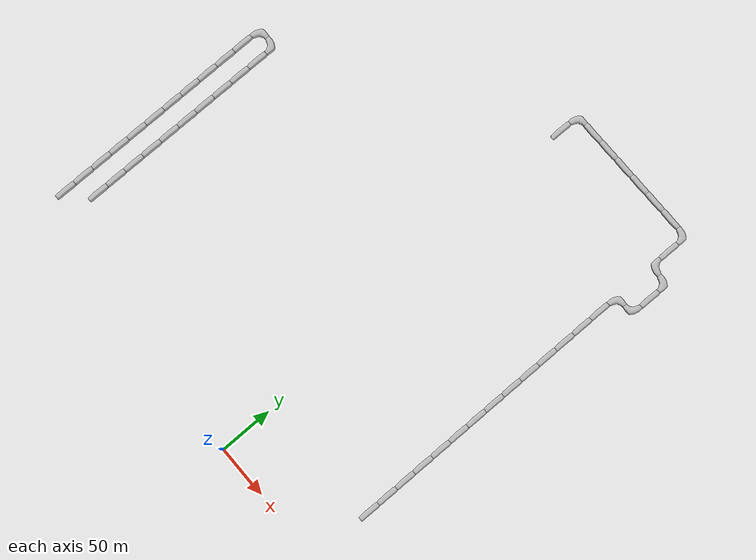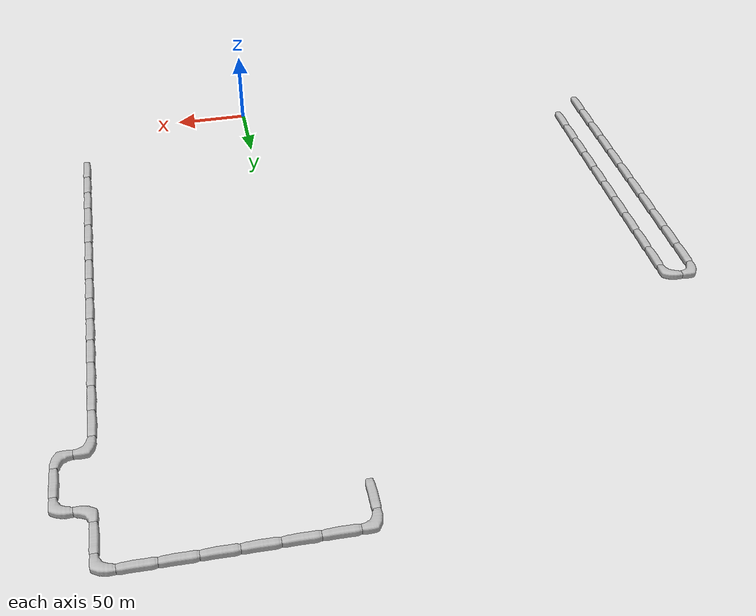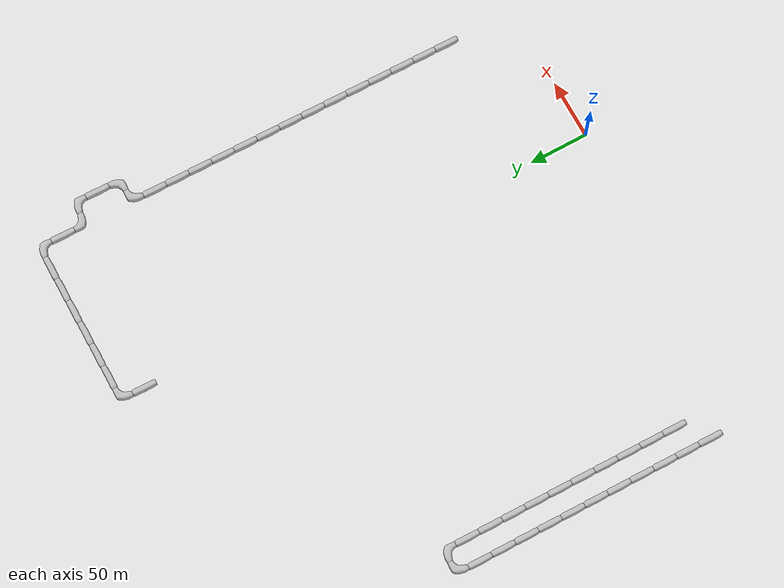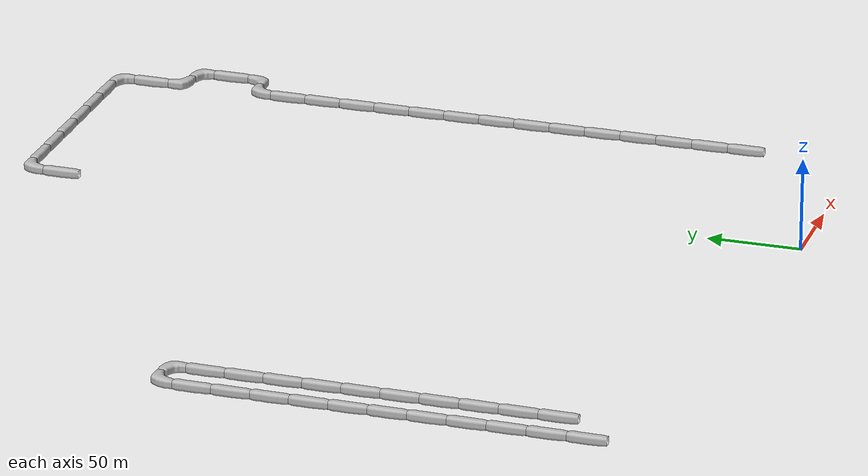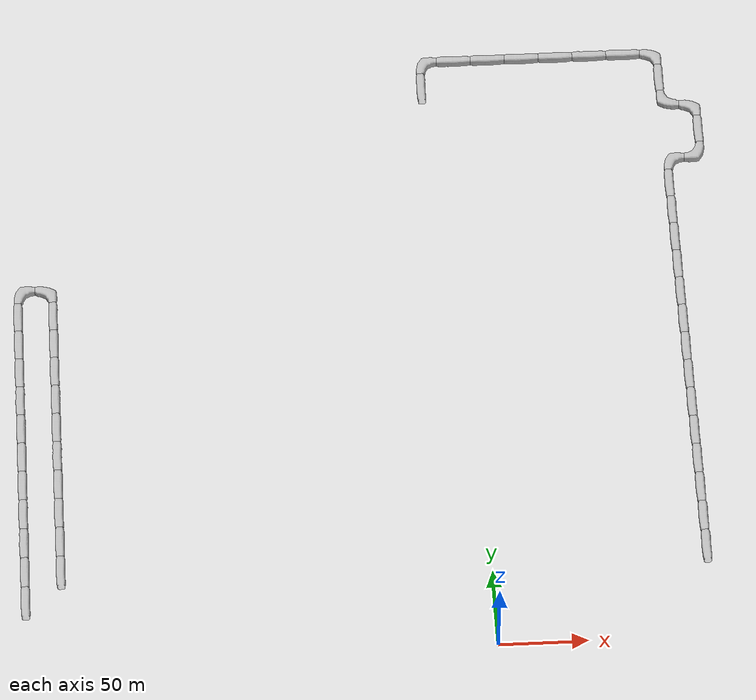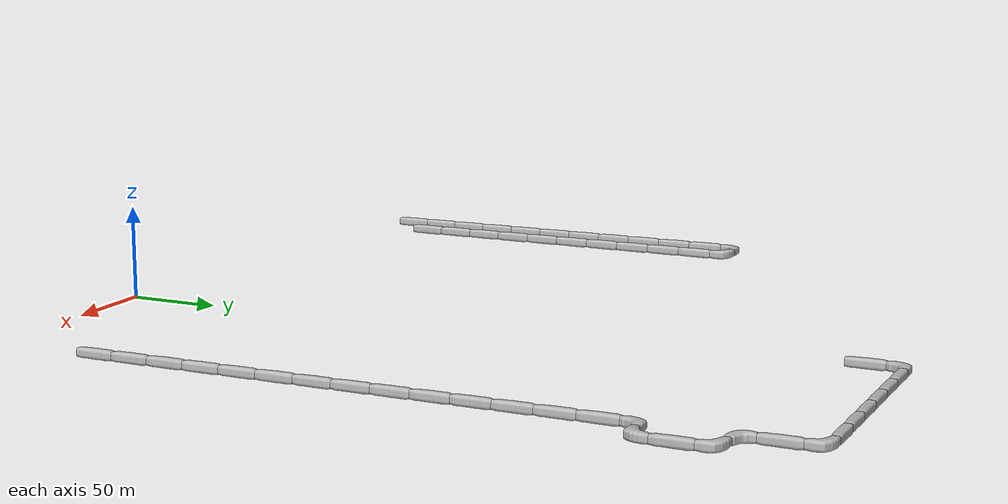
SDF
<sdf version="1.6">
 <world name="cave_4000_16">
  <include>
   <static>true</static>
   <name>cave_6_3</name>
   <pose>120 60 0 0 0 0.0</pose>
   <uri>model://cave_straight_20m</uri>
  </include>
  <include>
   <static>true</static>
   <name>cave_6_4</name>
   <pose>120 80 0 0 0 0.0</pose>
   <uri>model://cave_straight_20m</uri>
  </include>
  <include>
   <static>true</static>
   <name>cave_6_5</name>
   <pose>120 100 0 0 0 0.0</pose>
   <uri>model://cave_straight_20m</uri>
  </include>
  <include>
   <static>true</static>
   <name>cave_6_6</name>
   <pose>120 120 0 0 0 0.0</pose>
   <uri>model://cave_straight_20m</uri>
  </include>
  <include>
   <static>true</static>
   <name>cave_6_7</name>
   <pose>120 140 0 0 0 0.0</pose>
   <uri>model://cave_straight_20m</uri>
  </include>
  <include>
   <static>true</static>
   <name>cave_6_8</name>
   <pose>120 160 0 0 0 0.0</pose>
   <uri>model://cave_straight_20m</uri>
  </include>
  <include>
   <static>true</static>
   <name>cave_6_9</name>
   <pose>120 180 0 0 0 0.0</pose>
   <uri>model://cave_straight_20m</uri>
  </include>
  <include>
   <static>true</static>
   <name>cave_6_10</name>
   <pose>120 200 0 0 0 0.0</pose>
   <uri>model://cave_straight_20m</uri>
  </include>
  <include>
   <static>true</static>
   <name>cave_6_11</name>
   <pose>120 220 0 0 0 0.0</pose>
   <uri>model://cave_straight_20m</uri>
  </include>
  <include>
   <static>true</static>
   <name>cave_6_12</name>
   <pose>120 240 0 0 0 0.0</pose>
   <uri>model://cave_straight_20m</uri>
  </include>
  <include>
   <static>true</static>
   <name>cave_6_13</name>
   <pose>120 260 0 0 0 0.0</pose>
   <uri>model://cave_straight_20m</uri>
  </include>
  <include>
   <static>true</static>
   <name>cave_6_14</name>
   <pose>120 280 0 0 0 0.0</pose>
   <uri>model://cave_straight_20m</uri>
  </include>
  <include>
   <static>true</static>
   <name>cave_6_15</name>
   <pose>120 300 0 0 0 0.0</pose>
   <uri>model://cave_straight_20m</uri>
  </include>
  <include>
   <static>true</static>
   <name>cave_6_16</name>
   <pose>120 320 0 0 0 0.0</pose>
   <uri>model://cave_straight_20m</uri>
  </include>
  <include>
   <static>true</static>
   <name>cave_6_17</name>
   <pose>120 340 0 0 0 -1.5707963267948966</pose>
   <uri>model://cave_L_20m</uri>
  </include>
  <include>
   <static>true</static>
   <name>cave_7_17</name>
   <pose>140 340 0 0 0 1.5707963267948966</pose>
   <uri>model://cave_L_20m</uri>
  </include>
  <include>
   <static>true</static>
   <name>cave_7_18</name>
   <pose>140 360 0 0 0 0.0</pose>
   <uri>model://cave_straight_20m</uri>
  </include>
  <include>
   <static>true</static>
   <name>cave_7_19</name>
   <pose>140 380 0 0 0 3.141592653589793</pose>
   <uri>model://cave_L_20m</uri>
  </include>
  <include>
   <static>true</static>
   <name>cave_6_19</name>
   <pose>120 380 0 0 0 0.0</pose>
   <uri>model://cave_L_20m</uri>
  </include>
  <include>
   <static>true</static>
   <name>cave_6_20</name>
   <pose>120 400 0 0 0 0.0</pose>
   <uri>model://cave_straight_20m</uri>
  </include>
  <include>
   <static>true</static>
   <name>cave_6_21</name>
   <pose>120 420 0 0 0 3.141592653589793</pose>
   <uri>model://cave_L_20m</uri>
  </include>
  <include>
   <static>true</static>
   <name>cave_5_21</name>
   <pose>100 420 0 0 0 1.5707963267948966</pose>
   <uri>model://cave_straight_20m</uri>
  </include>
  <include>
   <static>true</static>
   <name>cave_4_21</name>
   <pose>80 420 0 0 0 1.5707963267948966</pose>
   <uri>model://cave_straight_20m</uri>
  </include>
  <include>
   <static>true</static>
   <name>cave_3_21</name>
   <pose>60 420 0 0 0 1.5707963267948966</pose>
   <uri>model://cave_straight_20m</uri>
  </include>
  <include>
   <static>true</static>
   <name>cave_2_21</name>
   <pose>40 420 0 0 0 1.5707963267948966</pose>
   <uri>model://cave_straight_20m</uri>
  </include>
  <include>
   <static>true</static>
   <name>cave_1_21</name>
   <pose>20 420 0 0 0 1.5707963267948966</pose>
   <uri>model://cave_straight_20m</uri>
  </include>
  <include>
   <static>true</static>
   <name>cave_0_21</name>
   <pose>0 420 0 0 0 1.5707963267948966</pose>
   <uri>model://cave_straight_20m</uri>
  </include>
  <include>
   <static>true</static>
   <name>cave_-1_21</name>
   <pose>-20 420 0 0 0 -1.5707963267948966</pose>
   <uri>model://cave_L_20m</uri>
  </include>
  <include>
   <static>true</static>
   <name>cave_-1_20</name>
   <pose>-20 400 0 0 0 0.0</pose>
   <uri>model://cave_straight_20m</uri>
  </include>
  <include>
   <static>true</static>
   <name>cave_-12_3</name>
   <pose>-240 60 0 0 0 0.0</pose>
   <uri>model://cave_straight_20m</uri>
  </include>
  <include>
   <static>true</static>
   <name>cave_-12_4</name>
   <pose>-240 80 0 0 0 0.0</pose>
   <uri>model://cave_straight_20m</uri>
  </include>
  <include>
   <static>true</static>
   <name>cave_-12_5</name>
   <pose>-240 100 0 0 0 0.0</pose>
   <uri>model://cave_straight_20m</uri>
  </include>
  <include>
   <static>true</static>
   <name>cave_-12_6</name>
   <pose>-240 120 0 0 0 0.0</pose>
   <uri>model://cave_straight_20m</uri>
  </include>
  <include>
   <static>true</static>
   <name>cave_-12_7</name>
   <pose>-240 140 0 0 0 0.0</pose>
   <uri>model://cave_straight_20m</uri>
  </include>
  <include>
   <static>true</static>
   <name>cave_-12_8</name>
   <pose>-240 160 0 0 0 0.0</pose>
   <uri>model://cave_straight_20m</uri>
  </include>
  <include>
   <static>true</static>
   <name>cave_-12_9</name>
   <pose>-240 180 0 0 0 0.0</pose>
   <uri>model://cave_straight_20m</uri>
  </include>
  <include>
   <static>true</static>
   <name>cave_-12_10</name>
   <pose>-240 200 0 0 0 0.0</pose>
   <uri>model://cave_straight_20m</uri>
  </include>
  <include>
   <static>true</static>
   <name>cave_-12_11</name>
   <pose>-240 220 0 0 0 0.0</pose>
   <uri>model://cave_straight_20m</uri>
  </include>
  <include>
   <static>true</static>
   <name>cave_-12_12</name>
   <pose>-240 240 0 0 0 0.0</pose>
   <uri>model://cave_straight_20m</uri>
  </include>
  <include>
   <static>true</static>
   <name>cave_-12_13</name>
   <pose>-240 260 0 0 0 3.141592653589793</pose>
   <uri>model://cave_L_20m</uri>
  </include>
  <include>
   <static>true</static>
   <name>cave_-13_13</name>
   <pose>-260 260 0 0 0 -1.5707963267948966</pose>
   <uri>model://cave_L_20m</uri>
  </include>
  <include>
   <static>true</static>
   <name>cave_-13_12</name>
   <pose>-260 240 0 0 0 0.0</pose>
   <uri>model://cave_straight_20m</uri>
  </include>
  <include>
   <static>true</static>
   <name>cave_-13_11</name>
   <pose>-260 220 0 0 0 0.0</pose>
   <uri>model://cave_straight_20m</uri>
  </include>
  <include>
   <static>true</static>
   <name>cave_-13_10</name>
   <pose>-260 200 0 0 0 0.0</pose>
   <uri>model://cave_straight_20m</uri>
  </include>
  <include>
   <static>true</static>
   <name>cave_-13_9</name>
   <pose>-260 180 0 0 0 0.0</pose>
   <uri>model://cave_straight_20m</uri>
  </include>
  <include>
   <static>true</static>
   <name>cave_-13_8</name>
   <pose>-260 160 0 0 0 0.0</pose>
   <uri>model://cave_straight_20m</uri>
  </include>
  <include>
   <static>true</static>
   <name>cave_-13_7</name>
   <pose>-260 140 0 0 0 0.0</pose>
   <uri>model://cave_straight_20m</uri>
  </include>
  <include>
   <static>true</static>
   <name>cave_-13_6</name>
   <pose>-260 120 0 0 0 0.0</pose>
   <uri>model://cave_straight_20m</uri>
  </include>
  <include>
   <static>true</static>
   <name>cave_-13_5</name>
   <pose>-260 100 0 0 0 0.0</pose>
   <uri>model://cave_straight_20m</uri>
  </include>
  <include>
   <static>true</static>
   <name>cave_-13_4</name>
   <pose>-260 80 0 0 0 0.0</pose>
   <uri>model://cave_straight_20m</uri>
  </include>
  <include>
   <static>true</static>
   <name>cave_-13_3</name>
   <pose>-260 60 0 0 0 0.0</pose>
   <uri>model://cave_straight_20m</uri>
  </include>
  <include>
   <static>true</static>
   <name>cave_-13_2</name>
   <pose>-260 40 0 0 0 0.0</pose>
   <uri>model://cave_straight_20m</uri>
  </include>
 </world>
</sdf>
